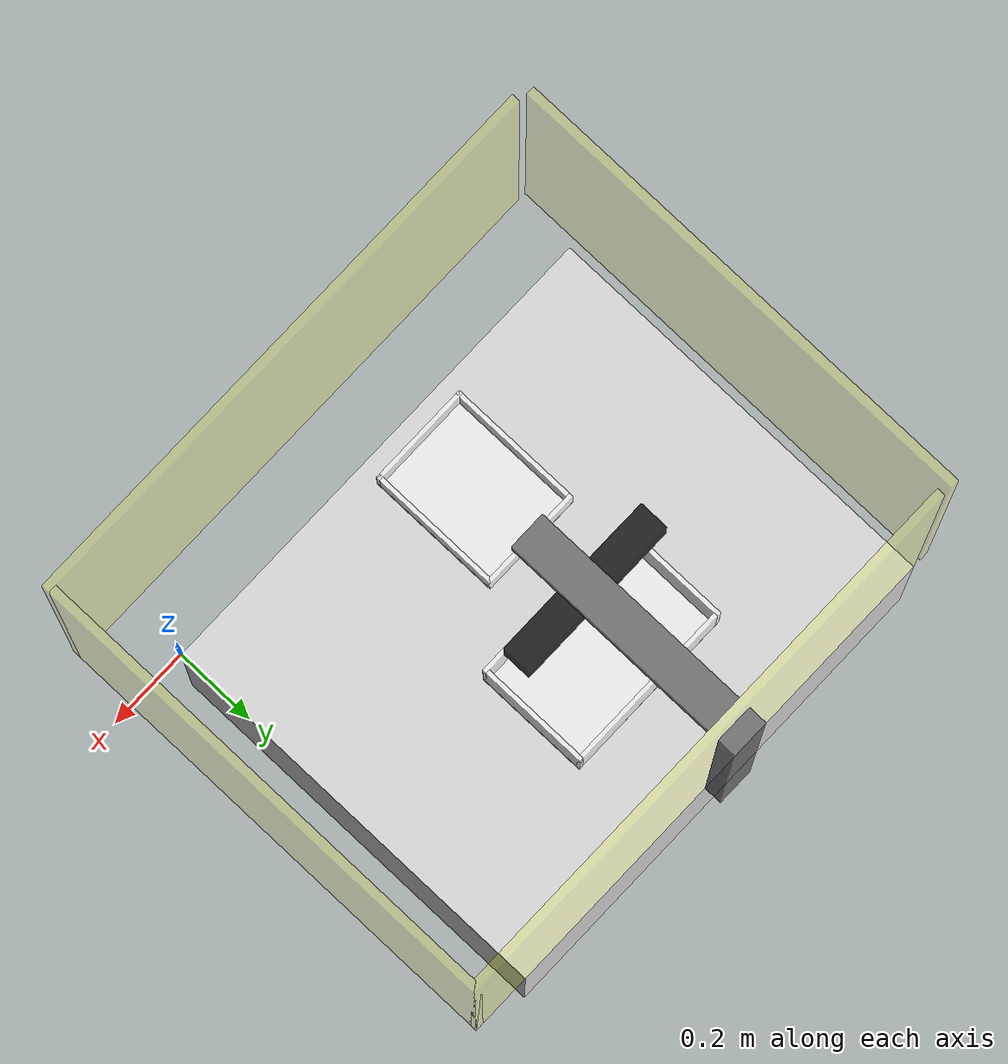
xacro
<?xml version="1.0" ?>
<robot xmlns:xacro="http://ros.org/wiki/xacro">

  <xacro:include filename="$(find ur_description)/urdf/env/box.v2.urdf.xacro" />
  <xacro:include filename="$(find ur_description)/urdf/env/table.urdf.xacro" />
  <xacro:include filename="$(find ur_description)/urdf/env/wall.urdf.xacro" />
  <xacro:include filename="$(find ur_description)/urdf/env/camera.urdf.xacro" />

  <xacro:property name="half_pi" value="1.57079632679" />
  <xacro:property name="wall_delta" value="0.15" />
  <!-- Definitions of workspace dimensions (world) -->

  <link name="world"/>

  <xacro:generic_wall prefix="top" x="${tx + wall_delta}" y="${wdepth}" z="${wz}"/>
  <xacro:generic_wall prefix="left" x="${wdepth}" y="${ty + wall_delta}" z="${wz}"/>
  <xacro:generic_wall prefix="bottom" x="${tx + wall_delta}" y="${wdepth}" z="${wz}"/>
  <xacro:generic_wall prefix="right" x="${wdepth}" y="${ty + wall_delta}" z="${wz}"/>
  <xacro:table name="table"/>
  <xacro:box_source name="box_1"/>
  <xacro:box_destination name="box_dst"/>

  <joint name="world_top_wall_joint" type="fixed">
    <parent link="world"/>
    <child link="top_wall"/>
    <origin xyz="${wall_delta} ${ty} 0" rpy="0 0 0"/>
  </joint>

  <joint name="world_left_wall_joint" type="fixed">
    <parent link="world"/>
    <child link="left_wall"/>
    <origin xyz="-${tx + wdepth} ${ty} 0" rpy="0 0 0"/>
  </joint>

  <joint name="world_bottom_wall_joint" type="fixed">
    <parent link="world"/>
    <child link="bottom_wall"/>
    <origin xyz="${wall_delta} -${wall_delta} 0" rpy="0 0 0"/>
  </joint>

  <joint name="world_right_wall_joint" type="fixed">
    <parent link="world"/>
    <child link="right_wall"/>
    <origin xyz="${wall_delta} ${ty} 0" rpy="0 0 0"/>
  </joint>

  <joint name="world_camera_obstacle_joint" type="fixed">
    <parent link="world"/>
    <child link="camera_vert_fixation_obstacle_link"/>
    <origin xyz="-0.553 ${ty} 0.0" rpy="0 0 0"/>
  </joint>

  <joint name="world_table_link_joint" type="fixed">
    <parent link="world"/>
    <child link="table"/>
    <origin xyz="-0.0 0.0 0.0" rpy="0 0 0"/>
  </joint>

  <joint name="world_box_1_joint" type="fixed">
    <parent link="world"/>
    <child link="box_1_base"/>
    <origin xyz="-${0.4 + src_box_w / 2} ${0.5 + src_box_h / 2} 0.0" rpy="0 0 0"/>
  </joint>

  <joint name="world_box_dst_joint" type="fixed">
    <parent link="world"/>
    <child link="box_dst_base"/>
    <origin xyz="-${0.55 + dst_box_h * 0.5} ${0.05 + dst_box_w * 0.5} 0.0" rpy="0 0 ${half_pi}"/>
  </joint>

</robot>

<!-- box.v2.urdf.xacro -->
<robot name="box" xmlns:xacro="http://ros.org/wiki/xacro">

  <!-- Box plastic depth -->
  <xacro:property name="box_side_depth" value="0.01" />

  <!-- Definitions of box source dimensions  -->
  <xacro:property name="src_box_w" value="0.43" />
  <xacro:property name="src_box_h" value="0.28" />
  <xacro:property name="src_box_z" value="0.175" />

  <!-- Definitions of box destination dimensions  -->
  <xacro:property name="dst_box_w" value="0.33" />
  <xacro:property name="dst_box_h" value="0.255" />
  <xacro:property name="dst_box_z" value="0.10" />

  <material name="bscolor">
    <color rgba="1 1 1 0.85"/>
  </material>

  <xacro:macro name="generic_box"
    params="prefix bsw bsh bsz depth">

    <link name="${prefix}_base">
      <visual>
        <origin xyz="0 0 0" rpy="0 0 0"/>
        <geometry>
          <box size="${bsw} ${bsh} ${depth}"/>
        </geometry>
        <material name="bscolor" />
      </visual>
      <collision>
        <geometry>
          <box size="${bsw} ${bsh} ${depth}"/>
        </geometry>
      </collision>
    </link>

    <link name="${prefix}_left">
      <visual>
        <origin xyz="0 0 0" rpy="0 0 0"/>
        <geometry>
          <box size="${bsw} ${depth} ${bsz}"/>
        </geometry>
        <material name="bscolor" />
      </visual>
      <collision>
        <geometry>
          <box size="${bsw} ${depth} ${bsz}"/>
        </geometry>
      </collision>
    </link>
    <link name="${prefix}_right">
      <visual>
        <origin xyz="0 0 0" rpy="0 0 0"/>
        <geometry>
          <box size="${bsw} ${depth} ${bsz}"/>
        </geometry>
        <material name="bscolor" />
      </visual>
      <collision>
        <geometry>
          <box size="${bsw} ${depth} ${bsz}"/>
        </geometry>
      </collision>
    </link>
    <link name="${prefix}_top">
      <visual>
        <origin xyz="0 0 0" rpy="0 0 0"/>
        <geometry>
          <box size="${depth} ${bsh} ${bsz}"/>
        </geometry>
        <material name="bscolor" />
      </visual>
      <collision>
        <geometry>
          <box size="${depth} ${bsh} ${bsz}"/>
        </geometry>
      </collision>
    </link>
    <link name="${prefix}_bottom">
      <visual>
        <origin xyz="0 0 0" rpy="0 0 0"/>
        <geometry>
          <box size="${depth} ${bsh} ${bsz}"/>
        </geometry>
        <material name="bscolor" />
      </visual>
      <collision>
        <geometry>
          <box size="${depth} ${bsh} ${bsz}"/>
        </geometry>
      </collision>
    </link>

    <joint name="${prefix}_base_to_left" type="fixed">
      <parent link="${prefix}_base"/>
      <child link="${prefix}_left"/>
      <origin xyz="0.0 -${bsh * 0.5 - depth * 0.5} ${bsz * 0.5 - depth * 0.5}"/>
    </joint>
    <joint name="${prefix}_base_to_right" type="fixed">
      <parent link="${prefix}_base"/>
      <child link="${prefix}_right"/>
      <origin xyz="0.0 ${bsh * 0.5 - depth * 0.5} ${bsz * 0.5 - depth * 0.5}"/>
    </joint>
    <joint name="${prefix}_base_to_top" type="fixed">
      <parent link="${prefix}_base"/>
      <child link="${prefix}_top"/>
      <origin xyz="${bsw * 0.5 - depth * 0.5} 0.0 ${bsz * 0.5 - depth * 0.5}"/>
    </joint>
    <joint name="${prefix}_base_to_bottom" type="fixed">
      <parent link="${prefix}_base"/>
      <child link="${prefix}_bottom"/>
      <origin xyz="-${bsw * 0.5 - depth * 0.5} 0.0 ${bsz * 0.5 - depth * 0.5}"/>
    </joint>

  </xacro:macro>

  <xacro:macro name="box_source" params="name">
    <xacro:generic_box
      prefix="${name}"
      bsw="${src_box_w}"
      bsh="${src_box_h}"
      bsz="${src_box_z}"
      depth="${box_side_depth}"/>
  </xacro:macro>

  <xacro:macro name="box_destination" params="name">
    <xacro:generic_box
      prefix="${name}"
      bsw="${dst_box_w}"
      bsh="${dst_box_h}"
      bsz="${dst_box_z}"
      depth="${box_side_depth}"/>
  </xacro:macro>

</robot>

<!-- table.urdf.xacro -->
<robot name="table" xmlns:xacro="http://ros.org/wiki/xacro">

<!-- Definition of table dimensions  -->
<xacro:property name="tx" value="1.20" />
<xacro:property name="ty" value="1.0" />
<xacro:property name="tz" value="0.56" />

<material name="white">
  <color rgba="0.85 0.85 0.85 1"/>
</material>

<xacro:macro name="table" params="name">
  <link name="table">
    <visual>
      <!-- xyz point is zero of tye parent link -->
      <origin rpy="0 0 0" xyz="-${tx * 0.5} ${ty * 0.5} -${tz * 0.5}"/>
      <geometry>
        <box size="${tx} ${ty} ${tz}"/>
      </geometry>
      <material name="white" />
    </visual>
    <collision>
      <origin rpy="0 0 0" xyz="-${tx * 0.5} ${ty * 0.5} -${tz * 0.5}"/>
      <geometry>
        <box size="${tx} ${ty} ${tz}"/>
      </geometry>
    </collision>
  </link>
</xacro:macro>

</robot>

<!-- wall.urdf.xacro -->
<robot name="wall" xmlns:xacro="http://ros.org/wiki/xacro">

<!-- Definition of table dimensions  -->
<xacro:property name="wdepth" value="0.02" />
<xacro:property name="wz" value="1.1" />

<material name="yellow">
  <color rgba="1 1 0 0.15"/>
</material>

<xacro:macro name="generic_wall" params="prefix x y z">

<link name="${prefix}_wall">
  <visual>
    <origin xyz="-${x / 2} -${y / 2} ${z / 2}" rpy="0 0 0"/>
    <geometry>
      <box size="${x} ${y} ${z}"/>
    </geometry>
    <material name="yellow" />
  </visual>
  <collision>
    <origin xyz="-${x / 2} -${y / 2} ${z / 2}" rpy="0 0 0"/>
    <geometry>
      <box size="${x} ${y} ${z}"/>
    </geometry>
  </collision>
</link>
</xacro:macro>

</robot>

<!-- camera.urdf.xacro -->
<robot name="wall" xmlns:xacro="http://ros.org/wiki/xacro">

<!-- Definition of camera dimensions  -->
<xacro:property name="cam_x" value="0.40" />
<xacro:property name="cam_y" value="0.07" />
<xacro:property name="cam_z" value="0.10" />

<!-- Definition of camera dimensions  -->
<xacro:property name="hor_bulk_x" value="0.09" />
<xacro:property name="hor_bulk_y" value="0.563" />
<xacro:property name="hor_bulk_z" value="0.045" />

<xacro:property name="vert_bulk_x" value="0.09" />
<xacro:property name="vert_bulk_y" value="0.045" />
<xacro:property name="vert_bulk_z" value="0.965" />

<material name="black">
  <color rgba="0 0 0 0.8"/>
</material>

<material name="gray">
  <color rgba="0.4 0.4 0.4 0.8"/>
</material>

<link name="camera_obstacle_link">
  <visual>
    <geometry>
      <box size="${cam_x} ${cam_y} ${cam_z}"/>
    </geometry>
    <material name="black" />
  </visual>
  <collision>
    <geometry>
      <box size="${cam_x} ${cam_y} ${cam_z}"/>
    </geometry>
  </collision>
</link>

<link name="camera_hor_fixation_obstacle_link">
  <visual>
    <origin xyz="-${hor_bulk_x / 2} ${hor_bulk_y / 2} ${hor_bulk_z / 2}" rpy="0 0 0"/>
    <geometry>
      <box size="${hor_bulk_x} ${hor_bulk_y} ${hor_bulk_z}"/>
    </geometry>
    <material name="gray" />
  </visual>
  <collision>
    <origin xyz="-${hor_bulk_x / 2} ${hor_bulk_y / 2} ${hor_bulk_z / 2}" rpy="0 0 0"/>
    <geometry>
      <box size="${hor_bulk_x} ${hor_bulk_y} ${hor_bulk_z}"/>
    </geometry>
  </collision>
</link>

<link name="camera_vert_fixation_obstacle_link">
  <visual>
    <origin xyz="-${vert_bulk_x / 2} ${vert_bulk_y / 2} ${vert_bulk_z / 2}" rpy="0 0 0"/>
    <geometry>
      <box size="${vert_bulk_x} ${vert_bulk_y} ${vert_bulk_z}"/>
    </geometry>
    <material name="gray" />
  </visual>
  <collision>
    <origin xyz="-${vert_bulk_x / 2} ${vert_bulk_y / 2} ${vert_bulk_z / 2}" rpy="0 0 0"/>
    <geometry>
      <box size="${vert_bulk_x} ${vert_bulk_y} ${vert_bulk_z}"/>
    </geometry>
  </collision>
</link>

<joint name="camera_vert_hor_joint" type="fixed">
  <parent link="camera_vert_fixation_obstacle_link"/>
  <child link="camera_hor_fixation_obstacle_link"/>
  <origin xyz="0.0 -${hor_bulk_y} ${vert_bulk_z - hor_bulk_z}" rpy="0 0 0"/>
</joint>

<joint name="camera_hor_joint" type="fixed">
  <parent link="camera_hor_fixation_obstacle_link"/>
  <child link="camera_obstacle_link"/>
  <origin xyz="-${hor_bulk_x / 2} 0.16 -0.044" rpy="0 0 0"/>
</joint>

</robot>
